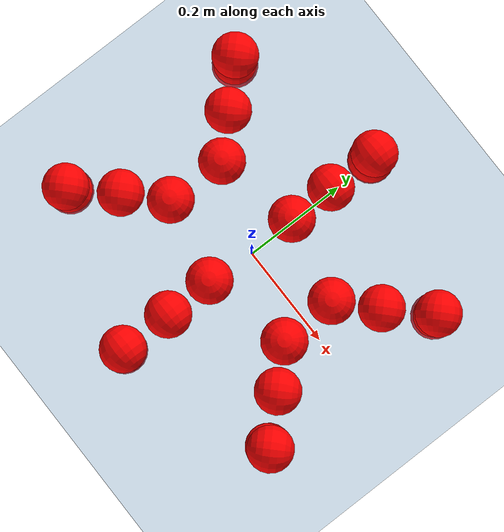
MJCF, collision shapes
<mujoco model="Golem">
  <compiler angle="radian" assetdir="assets" balanceinertia="true" inertiafromgeom="false"/>

  <option timestep="0.005" density="1.2" viscosity="2e-05"/>

  <size nkey="1"/>

  <visual>
    <quality shadowsize="8192"/>
    <map shadowclip="0.5"/>
  </visual>

  <default>
    <default class="/">
      <joint armature="0.01" damping="0.01" frictionloss="0.01"/>
      <geom contype="0" conaffinity="0" group="1" solref="-1000 -80"/>
      <site size="0.01 0.005 0.005" group="5"/>
      <general forcelimited="true" biastype="affine" gainprm="25" biasprm="0 -25 -0.5"/>
      <default class="visual">
        <geom type="mesh" group="2"/>
      </default>
      <default class="collision">
        <geom group="3"/>
      </default>
      <default class="foot">
        <geom size="0.01 0 0" condim="6" group="4" priority="1" solimp="0.015 1 0.01"/>
      </default>
      <default class="reward_collision_sphere">
        <geom group="5" rgba="1 0 0 1"/>
      </default>
    </default>
  </default>

  <asset>
    <texture type="skybox" colorspace="auto" name="//unnamed_texture_0" builtin="gradient" rgb1="0.95 0.95 0.95" rgb2="0.95 0.95 0.95" width="100" height="600"/>
    <texture type="2d" colorspace="auto" name="texplane" builtin="checker" rgb1="0.345 0.575 0.748" rgb2="0.345 0.575 0.748" markrgb="1 1 1" width="512" height="512"/>
    <material name="MatPlane" class="/" texture="texplane" texuniform="true" texrepeat="2 2" specular="0.9"/>
    <mesh name="body" class="/" file="body.stl" scale="0.001 0.001 0.001"/>
    <mesh name="coxa" class="/" file="coxa.stl" scale="0.001 0.001 0.001"/>
    <mesh name="femur" class="/" file="femur.stl" scale="0.001 0.001 0.001"/>
    <mesh name="tibia" class="/" file="tibia.stl" scale="0.001 0.001 0.001"/>
    <mesh name="tarsus" class="/" file="tarsus.stl" scale="0.001 0.001 0.001"/>
  </asset>

  <worldbody>
    <geom name="floor" class="/" size="100 100 0.125" type="plane" group="0" material="MatPlane"/>
    <light name="toplight_shadow" class="/" pos="0 0 5" dir="0.0990148 0.0990148 -0.990148" type="directional" ambient="0.04 0.04 0.04" diffuse="0.55 0.55 0.55" specular="0.12 0.12 0.12"/>
    <light name="toplight_fill" class="/" pos="0 0 5" dir="0.0990148 0.0990148 -0.990148" type="directional" castshadow="false" ambient="0.04 0.04 0.04" diffuse="0.3 0.3 0.3" specular="0.08 0.08 0.08"/>
    <body name="trunk" pos="-0.000162395 -0.00207278 -0.000917472" quat="1 4.46706e-05 -0.000176042 0.000192494">
      <inertial pos="0.00276208 -0.00265567 -0.0013536" quat="0.999914 0.00879176 0.00549165 -0.00804912" mass="4.66639" diaginertia="0.0110237 0.00698823 0.0340508"/>
      <joint name="//unnamed_joint_0" type="free"/>
      <geom name="//unnamed_geom_1" class="/" pos="0 0 0.0817919" quat="1 0 0 0" type="mesh" rgba="0.9 0.9 0.9 1" mesh="body"/>
      <site name="imu" class="/" pos="0.120933 -0.0041406 0.111347" size="0.01083"/>
      <camera name="track" class="/" pos="0 -1.88061 0" quat="0.707107 0.707107 0 0" mode="trackcom"/>
      <camera name="ego_camera" class="/" pos="0.133989 0 0.1278" quat="-0.5 -0.5 0.5 0.5"/>
      <body name="coxa_RR" pos="-0.183663 -0.0789311 0.0809463" quat="0.381524 0.000305478 0.00126894 -0.924358">
        <inertial pos="-2.74996e-05 0.00261075 -0.00141775" quat="0.999934 0.00229604 -0.0112054 -0.00048563" mass="0.241903" diaginertia="0.0108782 0.00695565 0.031302"/>
        <joint name="coxa_joint_RR" class="/" pos="0 0 0" axis="0.00741908 -0.00367307 -0.999966" stiffness="0.00877521" range="-3.09226 3.08574" armature="0.0120508" damping="0" frictionloss="0.0121954"/>
        <geom name="//unnamed_geom_2" class="/" type="mesh" rgba="0.2 0.2 0.2 1" mesh="coxa"/>
        <geom name="//unnamed_geom_3" class="reward_collision_sphere" size="0.0433198" pos="-0.0309204 0 0"/>
        <body name="femur_RR" pos="0.0602808 -0.00174684 -0.00241088" quat="0.500404 -0.498941 0.500365 0.500288">
          <inertial pos="-0.000194241 -0.00301127 0.00169793" quat="0.999986 -0.00374584 0.00139748 0.00341694" mass="0.260518" diaginertia="0.0120345 0.00728051 0.0345108"/>
          <joint name="femur_joint_RR" class="/" pos="0 0 0" axis="-0.00360717 0.00585064 -0.999976" range="-3.08731 3.08667" armature="0.0103456" damping="0.0211649" frictionloss="0.0109039"/>
          <geom name="//unnamed_geom_4" class="/" type="mesh" rgba="0.9 0.9 0.9 1" mesh="femur"/>
          <geom name="//unnamed_geom_5" class="reward_collision_sphere" size="0.0433198"/>
          <body name="tibia_RR" pos="-0.00037022 -0.0997968 0.00164344" quat="-1.29479e-06 1 4.38496e-06 4.24203e-07">
            <inertial pos="0.00119862 -0.00225478 0.00216438" quat="0.999999 -0.000751014 -0.000382837 -0.000758801" mass="0.254137" diaginertia="0.0115753 0.00739137 0.0336055"/>
            <joint name="tibia_joint_RR" class="/" pos="0 0 0" axis="-0.00384161 -0.00814078 0.999959" stiffness="0.00632169" range="-3.18507 3.18467" armature="0.00991433" damping="0.0216615" frictionloss="0.0087421"/>
            <geom name="//unnamed_geom_6" class="/" type="mesh" rgba="0.2 0.2 0.2 1" mesh="tibia"/>
            <geom name="//unnamed_geom_7" class="reward_collision_sphere" size="0.0433198"/>
            <body name="tarsus_RR" pos="0.0901217 -0.000145318 0.00272932" quat="1 -0.000224836 -0.000343065 -0.000749831">
              <inertial pos="0.0643906 -0.00184011 0.000469253" quat="0.503996 0.491702 0.500857 0.503348" mass="0.258124" diaginertia="0.0121632 0.00724208 0.033083"/>
              <joint name="tarsus_joint_RR" class="/" pos="0 0 0" axis="0.00488479 0.000227021 0.999988" stiffness="0.0027563" range="-3.17167 3.12053" armature="0.0094465" damping="0.0050235" frictionloss="0.0117153"/>
              <geom name="//unnamed_geom_8" class="/" type="mesh" rgba="0.9 0.9 0.9 1" mesh="tarsus"/>
              <geom name="foot_1" class="foot" size="0.0112254" pos="0.115436 0 0" quat="0 -0.707107 0 0.707107"/>
              <geom name="//unnamed_geom_10" class="reward_collision_sphere" size="0.0433198"/>
              <geom name="//unnamed_geom_11" class="reward_collision_sphere" size="0.0162449" pos="0.110798 0 0"/>
              <site name="foot_1" class="foot" pos="0.115436 0 0" quat="0 -0.707107 0 0.707107" size="0.01083"/>
            </body>
          </body>
        </body>
      </body>
      <body name="coxa_RM" pos="-0.00354808 -0.122551 0.083456" quat="0.707275 0.00112753 -0.000259928 -0.706937">
        <inertial pos="0.00103322 9.561e-05 0.000981323" quat="0.999868 0.0151635 0.00194644 -0.00546781" mass="0.237409" diaginertia="0.011187 0.00682881 0.0326057"/>
        <joint name="coxa_joint_RM" class="/" pos="0 0 0" axis="0.00795299 0.0119603 -0.999897" range="-3.14713 3.10335" armature="0.00941198" damping="0.0279136" frictionloss="0.0112771"/>
        <geom name="//unnamed_geom_12" class="/" type="mesh" rgba="0.2 0.2 0.2 1" mesh="coxa"/>
        <geom name="//unnamed_geom_13" class="reward_collision_sphere" size="0.0433198" pos="-0.0309204 0 0"/>
        <body name="femur_RM" pos="0.0645033 0.00217091 -0.000910936" quat="0.499732 -0.499911 0.499721 0.500636">
          <inertial pos="-0.000462471 0.000278353 -0.00107728" quat="0.999948 -0.00847234 -0.00575075 0.000211776" mass="0.257528" diaginertia="0.0116982 0.00733688 0.033004"/>
          <joint name="femur_joint_RM" class="/" pos="0 0 0" axis="-0.00184463 0.000590458 -0.999998" stiffness="0.00794323" range="-3.1513 3.17779" armature="0.0110002" damping="0.0159504" frictionloss="0.00999316"/>
          <geom name="//unnamed_geom_14" class="/" type="mesh" rgba="0.9 0.9 0.9 1" mesh="femur"/>
          <geom name="//unnamed_geom_15" class="reward_collision_sphere" size="0.0433198"/>
          <body name="tibia_RM" pos="-0.000407589 -0.101452 -0.000976842" quat="-0.000226332 1 0.000746204 0.000177044">
            <inertial pos="0.000739695 0.000198447 -0.00014207" quat="0.999932 -0.00148963 0.0114915 0.00142389" mass="0.247085" diaginertia="0.0116725 0.00742432 0.0332637"/>
            <joint name="tibia_joint_RM" class="/" pos="0 0 0" axis="-0.0102576 0.00357372 0.999941" range="-3.09269 3.15099" armature="0.0121542" damping="0.018276" frictionloss="0.00966829"/>
            <geom name="//unnamed_geom_16" class="/" type="mesh" rgba="0.2 0.2 0.2 1" mesh="tibia"/>
            <geom name="//unnamed_geom_17" class="reward_collision_sphere" size="0.0433198"/>
            <body name="tarsus_RM" pos="0.0947168 0.00283883 0.00276981" quat="1 -0.000103219 -4.11877e-05 -0.000182032">
              <inertial pos="0.0611787 -0.00211728 -0.000431058" quat="0.500775 0.49835 0.498368 0.502495" mass="0.247236" diaginertia="0.0112824 0.00714761 0.0333486"/>
              <joint name="tarsus_joint_RM" class="/" pos="0 0 0" axis="0.0106785 0.00534897 0.999929" range="-3.08888 3.0909" armature="0.00967674" damping="0" frictionloss="0.0121937"/>
              <geom name="//unnamed_geom_18" class="/" type="mesh" rgba="0.9 0.9 0.9 1" mesh="tarsus"/>
              <geom name="foot_2" class="foot" size="0.0103499" pos="0.115436 0 0" quat="0 -0.707107 0 0.707107"/>
              <geom name="//unnamed_geom_20" class="reward_collision_sphere" size="0.0433198"/>
              <geom name="//unnamed_geom_21" class="reward_collision_sphere" size="0.0162449" pos="0.110798 0 0"/>
              <site name="foot_2" class="foot" pos="0.115436 0 0" quat="0 -0.707107 0 0.707107" size="0.01083"/>
            </body>
          </body>
        </body>
      </body>
      <body name="coxa_RF" pos="0.18614 -0.0745271 0.0817689" quat="0.923776 -0.000603347 0.00011521 -0.382933">
        <inertial pos="0.00240656 0.000957468 0.000165171" quat="0.999985 0.000393314 0.00105696 0.00541307" mass="0.250025" diaginertia="0.0111405 0.00711402 0.0315696"/>
        <joint name="coxa_joint_RF" class="/" pos="0 0 0" axis="-0.0132824 -0.00523228 -0.999898" stiffness="0.00662211" range="-3.12274 3.11815" armature="0.00977265" damping="0" frictionloss="0.0099146"/>
        <geom name="//unnamed_geom_22" class="/" type="mesh" rgba="0.2 0.2 0.2 1" mesh="coxa"/>
        <geom name="//unnamed_geom_23" class="reward_collision_sphere" size="0.0433198" pos="-0.0309204 0 0"/>
        <body name="femur_RF" pos="0.059037 -0.000529772 0.00145982" quat="0.499881 -0.499922 0.499956 0.500241">
          <inertial pos="0.00191323 -0.00076838 -0.00247325" quat="0.999965 -0.00719998 -0.00366436 -0.00208249" mass="0.25085" diaginertia="0.0113691 0.00711311 0.033602"/>
          <joint name="femur_joint_RF" class="/" pos="0 0 0" axis="0.0135174 -0.000323996 -0.999909" range="-3.09673 3.13046" armature="0.0111428" damping="0.0112563" frictionloss="0.0116521"/>
          <geom name="//unnamed_geom_24" class="/" type="mesh" rgba="0.9 0.9 0.9 1" mesh="femur"/>
          <geom name="//unnamed_geom_25" class="reward_collision_sphere" size="0.0433198"/>
          <body name="tibia_RF" pos="-0.00433941 -0.103316 -0.000881397" quat="2.69851e-05 0.999999 1.07757e-05 -0.00124108">
            <inertial pos="0.000650852 0.00190742 0.000435687" quat="0.99997 0.00599374 0.0048545 0.000891571" mass="0.273405" diaginertia="0.0117835 0.00746143 0.0343729"/>
            <joint name="tibia_joint_RF" class="/" pos="0 0 0" axis="0.00161773 -0.0084159 0.999963" stiffness="0.0273826" range="-3.17896 3.13882" armature="0.0108344" damping="0.0382036" frictionloss="0.0101181"/>
            <geom name="//unnamed_geom_26" class="/" type="mesh" rgba="0.2 0.2 0.2 1" mesh="tibia"/>
            <geom name="//unnamed_geom_27" class="reward_collision_sphere" size="0.0433198"/>
            <body name="tarsus_RF" pos="0.0920347 -0.00273527 0.00286085" quat="1 -8.67372e-06 -5.03816e-06 -5.97566e-07">
              <inertial pos="0.0650639 0.00218418 -0.00139758" quat="0.507531 0.498759 0.490265 0.503281" mass="0.248452" diaginertia="0.0110243 0.00723079 0.0340003"/>
              <joint name="tarsus_joint_RF" class="/" pos="0 0 0" axis="-0.0156742 -0.00439936 0.999867" stiffness="0.00817009" range="-3.17685 3.08918" armature="0.00956582" damping="0.00892317" frictionloss="0.0116588"/>
              <geom name="//unnamed_geom_28" class="/" type="mesh" rgba="0.9 0.9 0.9 1" mesh="tarsus"/>
              <geom name="foot_3" class="foot" size="0.0116177" pos="0.115436 0 0" quat="0 -0.707107 0 0.707107"/>
              <geom name="//unnamed_geom_30" class="reward_collision_sphere" size="0.0433198"/>
              <geom name="//unnamed_geom_31" class="reward_collision_sphere" size="0.0162449" pos="0.110798 0 0"/>
              <site name="foot_3" class="foot" pos="0.115436 0 0" quat="0 -0.707107 0 0.707107" size="0.01083"/>
            </body>
          </body>
        </body>
      </body>
      <body name="coxa_LR" pos="-0.182298 0.0807235 0.079841" quat="0.382618 0.000400117 -0.000359424 0.923906">
        <inertial pos="-0.00182312 -0.000721452 0.00115882" quat="0.99993 0.000485512 0.00500572 -0.0107311" mass="0.260062" diaginertia="0.0115666 0.00749234 0.0349811"/>
        <joint name="coxa_joint_LR" class="/" pos="0 0 0" axis="0.000185261 -0.000249316 -1" stiffness="0.00277973" range="-3.18283 3.10305" armature="0.0113003" damping="0.0110815" frictionloss="0.0110022"/>
        <geom name="//unnamed_geom_32" class="/" type="mesh" rgba="0.2 0.2 0.2 1" mesh="coxa"/>
        <geom name="//unnamed_geom_33" class="reward_collision_sphere" size="0.0433198" pos="-0.0309204 0 0"/>
        <body name="femur_LR" pos="0.0627209 0.000647199 -0.00256092" quat="0.499751 -0.499167 0.500446 0.500634">
          <inertial pos="0.00124808 0.000302165 0.00250262" quat="0.999922 -0.00264306 0.0120353 -0.00224072" mass="0.239367" diaginertia="0.0112572 0.00688157 0.0326377"/>
          <joint name="femur_joint_LR" class="/" pos="0 0 0" axis="-0.0104472 0.0182957 0.999778" stiffness="0.000641235" range="-3.18033 3.18829" armature="0.00893145" damping="0.0151727" frictionloss="0.0104946"/>
          <geom name="//unnamed_geom_34" class="/" type="mesh" rgba="0.9 0.9 0.9 1" mesh="femur"/>
          <geom name="//unnamed_geom_35" class="reward_collision_sphere" size="0.0433198"/>
          <body name="tibia_LR" pos="-0.00143396 -0.101198 -0.000453508" quat="-0.000930723 0.999999 -0.000112582 -0.000927878">
            <inertial pos="-0.00173624 0.00268434 -0.000230121" quat="0.999996 -0.00169714 -8.58199e-05 -0.00204548" mass="0.256758" diaginertia="0.0123467 0.00778493 0.0341205"/>
            <joint name="tibia_joint_LR" class="/" pos="0 0 0" axis="3.8577e-05 8.43534e-05 -1" range="-3.19041 3.14356" armature="0.0110699" damping="0.00377331" frictionloss="0.0107543"/>
            <geom name="//unnamed_geom_36" class="/" type="mesh" rgba="0.2 0.2 0.2 1" mesh="tibia"/>
            <geom name="//unnamed_geom_37" class="reward_collision_sphere" size="0.0433198"/>
            <body name="tarsus_LR" pos="0.0939233 -0.00100908 -0.00153782" quat="1 3.50697e-05 -0.000195809 -2.54367e-05">
              <inertial pos="0.0620989 0.00133443 0.00240652" quat="0.501071 0.500745 0.499285 0.498895" mass="0.251693" diaginertia="0.0112708 0.00677484 0.033685"/>
              <joint name="tarsus_joint_LR" class="/" pos="0 0 0" axis="0.00702274 0.000208732 -0.999975" stiffness="0.00686258" range="-3.18975 3.16369" armature="0.0109582" damping="0.0108576" frictionloss="0.0101127"/>
              <geom name="//unnamed_geom_38" class="/" type="mesh" rgba="0.9 0.9 0.9 1" mesh="tarsus"/>
              <geom name="foot_4" class="foot" size="0.0114067" pos="0.115436 0 0" quat="0.707107 0 -0.707107 0"/>
              <geom name="//unnamed_geom_40" class="reward_collision_sphere" size="0.0433198"/>
              <geom name="//unnamed_geom_41" class="reward_collision_sphere" size="0.0162449" pos="0.110798 0 0"/>
              <site name="foot_4" class="foot" pos="0.115436 0 0" quat="0.707107 0 -0.707107 0" size="0.01083"/>
            </body>
          </body>
        </body>
      </body>
      <body name="coxa_LM" pos="-0.000533053 0.124395 0.0816105" quat="0.707552 -0.00131205 0.000121341 0.70666">
        <inertial pos="5.05407e-05 -0.000199295 0.00226162" quat="0.999937 -0.00125213 0.0051923 -0.00985666" mass="0.254488" diaginertia="0.0123336 0.00767803 0.0354061"/>
        <joint name="coxa_joint_LM" class="/" pos="0 0 0" axis="0.0072449 -0.00329776 -0.999968" stiffness="0.00497446" range="-3.18481 3.14261" armature="0.0123368" damping="0.0160415" frictionloss="0.0107476"/>
        <geom name="//unnamed_geom_42" class="/" type="mesh" rgba="0.2 0.2 0.2 1" mesh="coxa"/>
        <geom name="//unnamed_geom_43" class="reward_collision_sphere" size="0.0433198" pos="-0.0309204 0 0"/>
        <body name="femur_LM" pos="0.0592442 0.00144044 0.000942952" quat="0.500152 -0.499622 0.500129 0.500097">
          <inertial pos="-0.000164001 -0.000335277 0.00354086" quat="1 -1.73743e-05 0.000254744 8.98975e-05" mass="0.25397" diaginertia="0.011347 0.00730307 0.0330771"/>
          <joint name="femur_joint_LM" class="/" pos="0 0 0" axis="0.00597308 0.00326992 0.999977" stiffness="0.00918433" range="-3.08839 3.20306" armature="0.0102196" damping="0.0217465" frictionloss="0.0112922"/>
          <geom name="//unnamed_geom_44" class="/" type="mesh" rgba="0.9 0.9 0.9 1" mesh="femur"/>
          <geom name="//unnamed_geom_45" class="reward_collision_sphere" size="0.0433198"/>
          <body name="tibia_LM" pos="-0.00143801 -0.0998685 6.91676e-05" quat="0.000367418 0.999999 0.00101924 5.43111e-05">
            <inertial pos="0.00227524 -0.000688037 0.000621574" quat="0.999944 0.00199292 0.00334857 0.00986087" mass="0.271607" diaginertia="0.0122333 0.00778281 0.0360469"/>
            <joint name="tibia_joint_LM" class="/" pos="0 0 0" axis="0.00274453 -0.00283168 -0.999992" stiffness="0.010926" range="-3.15206 3.10235" armature="0.00849885" damping="0.0276209" frictionloss="0.0105467"/>
            <geom name="//unnamed_geom_46" class="/" type="mesh" rgba="0.2 0.2 0.2 1" mesh="tibia"/>
            <geom name="//unnamed_geom_47" class="reward_collision_sphere" size="0.0433198"/>
            <body name="tarsus_LM" pos="0.0908338 -0.00138461 -0.000859608" quat="1 -0.000276377 0.000243921 -1.24122e-05">
              <inertial pos="0.0595536 0.000502053 -0.000890743" quat="0.503338 0.504047 0.50004 0.492492" mass="0.26834" diaginertia="0.0117885 0.00809878 0.0345829"/>
              <joint name="tarsus_joint_LM" class="/" pos="0 0 0" axis="-0.00218505 0.0073697 -0.99997" range="-3.14933 3.13611" armature="0.00961065" damping="0" frictionloss="0.00916037"/>
              <geom name="//unnamed_geom_48" class="/" type="mesh" rgba="0.9 0.9 0.9 1" mesh="tarsus"/>
              <geom name="foot_5" class="foot" size="0.0114714" pos="0.115436 0 0" quat="0.707107 0 -0.707107 0"/>
              <geom name="//unnamed_geom_50" class="reward_collision_sphere" size="0.0433198"/>
              <geom name="//unnamed_geom_51" class="reward_collision_sphere" size="0.0162449" pos="0.110798 0 0"/>
              <site name="foot_5" class="foot" pos="0.115436 0 0" quat="0.707107 0 -0.707107 0" size="0.01083"/>
            </body>
          </body>
        </body>
      </body>
      <body name="coxa_LF" pos="0.181199 0.0803452 0.0777943" quat="0.924186 0.000291318 0.000504041 0.381942">
        <inertial pos="0.00227626 0.00373957 -0.000426593" quat="0.999913 0.000491248 0.0124667 -0.00436353" mass="0.257398" diaginertia="0.0117112 0.00770922 0.0341947"/>
        <joint name="coxa_joint_LF" class="/" pos="0 0 0" axis="-0.0111806 -0.00412238 -0.999929" range="-3.17009 3.14068" armature="0.0123668" damping="0.0238431" frictionloss="0.0108417"/>
        <geom name="//unnamed_geom_52" class="/" type="mesh" rgba="0.2 0.2 0.2 1" mesh="coxa"/>
        <geom name="//unnamed_geom_53" class="reward_collision_sphere" size="0.0433198" pos="-0.0309204 0 0"/>
        <body name="femur_LF" pos="0.0602838 -0.00170955 -0.00169213" quat="0.500003 -0.499978 0.500037 0.499982">
          <inertial pos="-0.000236208 -0.00151787 0.00256736" quat="0.999998 0.000112405 -0.00151285 0.0015094" mass="0.266757" diaginertia="0.0122163 0.00749108 0.0345876"/>
          <joint name="femur_joint_LF" class="/" pos="0 0 0" axis="0.00898424 0.000491901 0.99996" range="-3.18066 3.13421" armature="0.0121319" damping="0.000974909" frictionloss="0.0111692"/>
          <geom name="//unnamed_geom_54" class="/" type="mesh" rgba="0.9 0.9 0.9 1" mesh="femur"/>
          <geom name="//unnamed_geom_55" class="reward_collision_sphere" size="0.0433198"/>
          <body name="tibia_LF" pos="0.00323042 -0.102409 0.00335632" quat="-0.000323717 1 0.000261806 -0.000765672">
            <inertial pos="0.00117108 -0.00161146 -0.00177988" quat="0.999994 0.00281748 0.000899353 -0.00151243" mass="0.249227" diaginertia="0.011171 0.00713321 0.0324499"/>
            <joint name="tibia_joint_LF" class="/" pos="0 0 0" axis="0.00206477 0.00264712 -0.999994" stiffness="0.0236367" range="-3.12722 3.14537" armature="0.00947756" damping="0.0224655" frictionloss="0.0122567"/>
            <geom name="//unnamed_geom_56" class="/" type="mesh" rgba="0.2 0.2 0.2 1" mesh="tibia"/>
            <geom name="//unnamed_geom_57" class="reward_collision_sphere" size="0.0433198"/>
            <body name="tarsus_LF" pos="0.0888034 -0.000431887 7.72916e-06" quat="1 0.000247848 -0.000165256 -4.90905e-06">
              <inertial pos="0.0657347 0.00320306 -0.00277419" quat="0.512335 0.486603 0.49441 0.50625" mass="0.247213" diaginertia="0.0117605 0.00738715 0.0336207"/>
              <joint name="tarsus_joint_LF" class="/" pos="0 0 0" axis="0.0199209 0.00923291 -0.999759" stiffness="0.0249243" range="-3.10035 3.13182" armature="0.0109638" damping="0.0160543" frictionloss="0.00968358"/>
              <geom name="//unnamed_geom_58" class="/" type="mesh" rgba="0.9 0.9 0.9 1" mesh="tarsus"/>
              <geom name="foot_6" class="foot" size="0.0107647" pos="0.115436 0 0" quat="0.707107 0 -0.707107 0"/>
              <geom name="//unnamed_geom_60" class="reward_collision_sphere" size="0.0433198"/>
              <geom name="//unnamed_geom_61" class="reward_collision_sphere" size="0.0162449" pos="0.110798 0 0"/>
              <site name="foot_6" class="foot" pos="0.115436 0 0" quat="0.707107 0 -0.707107 0" size="0.01083"/>
            </body>
          </body>
        </body>
      </body>
    </body>
  </worldbody>

  <contact>
    <pair class="/" geom1="floor" geom2="foot_1" name="//unnamed_contact_0"/>
    <pair class="/" geom1="floor" geom2="foot_2" name="//unnamed_contact_1"/>
    <pair class="/" geom1="floor" geom2="foot_3" name="//unnamed_contact_2"/>
    <pair class="/" geom1="floor" geom2="foot_4" name="//unnamed_contact_3"/>
    <pair class="/" geom1="floor" geom2="foot_5" name="//unnamed_contact_4"/>
    <pair class="/" geom1="floor" geom2="foot_6" name="//unnamed_contact_5"/>
  </contact>

  <actuator>
    <general name="coxa_joint_RR" class="/" joint="coxa_joint_RR" forcerange="-7.79986 7.79986" gainprm="26.5412" biasprm="0 -26.5412 -0.58426"/>
    <general name="femur_joint_RR" class="/" joint="femur_joint_RR" forcerange="-8.6873 8.6873" gainprm="26.5412" biasprm="0 -26.5412 -0.58426"/>
    <general name="tibia_joint_RR" class="/" joint="tibia_joint_RR" forcerange="-8.11899 8.11899" gainprm="26.5412" biasprm="0 -26.5412 -0.58426"/>
    <general name="tarsus_joint_RR" class="/" joint="tarsus_joint_RR" forcerange="-7.75111 7.75111" gainprm="26.5412" biasprm="0 -26.5412 -0.58426"/>
    <general name="coxa_joint_RM" class="/" joint="coxa_joint_RM" forcerange="-7.17943 7.17943" gainprm="26.5412" biasprm="0 -26.5412 -0.58426"/>
    <general name="femur_joint_RM" class="/" joint="femur_joint_RM" forcerange="-7.7255 7.7255" gainprm="26.5412" biasprm="0 -26.5412 -0.58426"/>
    <general name="tibia_joint_RM" class="/" joint="tibia_joint_RM" forcerange="-8.69058 8.69058" gainprm="26.5412" biasprm="0 -26.5412 -0.58426"/>
    <general name="tarsus_joint_RM" class="/" joint="tarsus_joint_RM" forcerange="-8.59376 8.59376" gainprm="26.5412" biasprm="0 -26.5412 -0.58426"/>
    <general name="coxa_joint_RF" class="/" joint="coxa_joint_RF" forcerange="-8.05355 8.05355" gainprm="26.5412" biasprm="0 -26.5412 -0.58426"/>
    <general name="femur_joint_RF" class="/" joint="femur_joint_RF" forcerange="-8.43512 8.43512" gainprm="26.5412" biasprm="0 -26.5412 -0.58426"/>
    <general name="tibia_joint_RF" class="/" joint="tibia_joint_RF" forcerange="-8.672 8.672" gainprm="26.5412" biasprm="0 -26.5412 -0.58426"/>
    <general name="tarsus_joint_RF" class="/" joint="tarsus_joint_RF" forcerange="-8.51319 8.51319" gainprm="26.5412" biasprm="0 -26.5412 -0.58426"/>
    <general name="coxa_joint_LR" class="/" joint="coxa_joint_LR" forcerange="-7.64554 7.64554" gainprm="26.5412" biasprm="0 -26.5412 -0.58426"/>
    <general name="femur_joint_LR" class="/" joint="femur_joint_LR" forcerange="-7.77871 7.77871" gainprm="26.5412" biasprm="0 -26.5412 -0.58426"/>
    <general name="tibia_joint_LR" class="/" joint="tibia_joint_LR" forcerange="-7.56768 7.56768" gainprm="26.5412" biasprm="0 -26.5412 -0.58426"/>
    <general name="tarsus_joint_LR" class="/" joint="tarsus_joint_LR" forcerange="-7.9224 7.9224" gainprm="26.5412" biasprm="0 -26.5412 -0.58426"/>
    <general name="coxa_joint_LM" class="/" joint="coxa_joint_LM" forcerange="-7.18441 7.18441" gainprm="26.5412" biasprm="0 -26.5412 -0.58426"/>
    <general name="femur_joint_LM" class="/" joint="femur_joint_LM" forcerange="-7.23095 7.23095" gainprm="26.5412" biasprm="0 -26.5412 -0.58426"/>
    <general name="tibia_joint_LM" class="/" joint="tibia_joint_LM" forcerange="-7.90547 7.90547" gainprm="26.5412" biasprm="0 -26.5412 -0.58426"/>
    <general name="tarsus_joint_LM" class="/" joint="tarsus_joint_LM" forcerange="-8.61569 8.61569" gainprm="26.5412" biasprm="0 -26.5412 -0.58426"/>
    <general name="coxa_joint_LF" class="/" joint="coxa_joint_LF" forcerange="-7.37809 7.37809" gainprm="26.5412" biasprm="0 -26.5412 -0.58426"/>
    <general name="femur_joint_LF" class="/" joint="femur_joint_LF" forcerange="-7.97524 7.97524" gainprm="26.5412" biasprm="0 -26.5412 -0.58426"/>
    <general name="tibia_joint_LF" class="/" joint="tibia_joint_LF" forcerange="-7.66173 7.66173" gainprm="26.5412" biasprm="0 -26.5412 -0.58426"/>
    <general name="tarsus_joint_LF" class="/" joint="tarsus_joint_LF" forcerange="-7.80223 7.80223" gainprm="26.5412" biasprm="0 -26.5412 -0.58426"/>
  </actuator>

  <sensor>
    <gyro site="imu" name="imu_angular_velocity"/>
    <velocimeter site="imu" name="imu_linear_velocity"/>
    <framelinvel objtype="site" objname="foot_1" name="foot_1_global_linear_velocity"/>
    <framelinvel objtype="site" objname="foot_2" name="foot_2_global_linear_velocity"/>
    <framelinvel objtype="site" objname="foot_3" name="foot_3_global_linear_velocity"/>
    <framelinvel objtype="site" objname="foot_4" name="foot_4_global_linear_velocity"/>
    <framelinvel objtype="site" objname="foot_5" name="foot_5_global_linear_velocity"/>
    <framelinvel objtype="site" objname="foot_6" name="foot_6_global_linear_velocity"/>
  </sensor>

  <keyframe>
    <key name="home" qpos="0 0 0.1457 1 0 0 0 0 0 0 0 0 0 0 0 0 0 0 0 0 0 0 0 0 0 0 0 0 0 0 0"/>
  </keyframe>
</mujoco>
